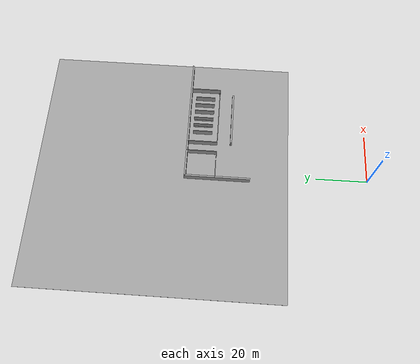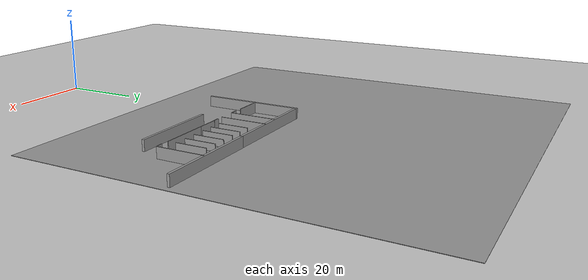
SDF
<sdf version="1.7">
 <world name="default">
  <model name="ground_plane">
   <static>1</static>
   <link name="link">
    <collision name="collision">
     <geometry><plane><normal>0 0 1</normal><size>100 100</size></plane></geometry>
     <surface><friction><ode><mu>100</mu><mu2>50</mu2></ode></friction></surface>
    </collision>
    <visual name="visual">
     <cast_shadows>0</cast_shadows>
     <geometry><plane><normal>0 0 1</normal><size>100 100</size></plane></geometry>
     <material>
      <script><uri>file://media/materials/scripts/gazebo.material</uri><name>Gazebo/Grey</name></script>
     </material>
    </visual>
   </link>
  </model>
  <model name="ground_plane_0">
   <static>1</static>
   <link name="link">
    <collision name="collision">
     <geometry><plane><normal>0 0 1</normal><size>100 100</size></plane></geometry>
     <surface><friction><ode><mu>100</mu><mu2>50</mu2></ode></friction></surface>
    </collision>
    <visual name="visual">
     <cast_shadows>0</cast_shadows>
     <geometry><plane><normal>0 0 1</normal><size>100 100</size></plane></geometry>
     <material>
      <script><uri>file://media/materials/scripts/gazebo.material</uri><name>Gazebo/Grey</name></script>
     </material>
    </visual>
   </link>
   <pose>-0.073857 81.0851 0 0 -0 0</pose>
  </model>
  <model name="grew_wall_long_vertial_0_clone">
   <model name="grey_wall_long">
    <link name="link">
     <pose>0 0 1.37589 0 -0 0</pose>
     <inertial>
      <inertia><ixx>0</ixx><ixy>0</ixy><ixz>0</ixz><iyy>0</iyy><iyz>0</iyz><izz>0</izz></inertia>
      <mass>0</mass>
     </inertial>
     <visual name="visual">
      <cast_shadows>0</cast_shadows>
      <geometry><box><size>25.8815 0.642976 2.8</size></box></geometry>
      <material>
       <script>
        <uri>model://grey_wall/materials/scripts</uri>
        <uri>model://grey_wall/materials/textures</uri>
        <name>vrc/grey_wall</name>
       </script>
       <shader type="pixel"><normal_map>__default__</normal_map></shader>
       <ambient>1 1 1 1</ambient>
       <diffuse>1 1 1 1</diffuse>
       <specular>0 0 0 1</specular>
       <emissive>0 0 0 1</emissive>
      </material>
     </visual>
     <collision name="collision">
      <geometry><box><size>25.8815 0.642976 2.8</size></box></geometry>
      <surface>
       <friction>
        <ode><mu>1</mu><mu2>1</mu2><fdir1>0 0 0</fdir1><slip1>0</slip1><slip2>0</slip2></ode>
        <torsional>
         <coefficient>1</coefficient>
         <patch_radius>0</patch_radius>
         <surface_radius>0</surface_radius>
         <use_patch_radius>1</use_patch_radius>
         <ode><slip>0</slip></ode>
        </torsional>
       </friction>
       <bounce><restitution_coefficient>0</restitution_coefficient><threshold>1e+06</threshold></bounce>
       <contact>
        <collide_without_contact>0</collide_without_contact>
        <collide_without_contact_bitmask>1</collide_without_contact_bitmask>
        <collide_bitmask>1</collide_bitmask>
        <ode>
         <soft_cfm>0</soft_cfm>
         <soft_erp>0.2</soft_erp>
         <kp>1e+13</kp>
         <kd>1</kd>
         <max_vel>0.01</max_vel>
         <min_depth>0</min_depth>
        </ode>
        <bullet>
         <split_impulse>1</split_impulse>
         <split_impulse_penetration_threshold>-0.01</split_impulse_penetration_threshold>
         <soft_cfm>0</soft_cfm>
         <soft_erp>0.2</soft_erp>
         <kp>1e+13</kp>
         <kd>1</kd>
        </bullet>
       </contact>
      </surface>
     </collision>
    </link>
    <static>1</static>
    <pose>1e-06 -0 0 0 -0 1.57003</pose>
   </model>
   <static>0</static>
   <pose>-2.80084 59.1647 0 0 -0 0</pose>
  </model>
  <model name="grey_wall_long_2">
   <link name="link">
    <pose>0 0 1.37589 0 -0 0</pose>
    <inertial>
     <inertia><ixx>0</ixx><ixy>0</ixy><ixz>0</ixz><iyy>0</iyy><iyz>0</iyz><izz>0</izz></inertia>
     <mass>0</mass>
    </inertial>
    <visual name="visual">
     <cast_shadows>0</cast_shadows>
     <geometry><box><size>25.8815 0.642976 2.8</size></box></geometry>
     <material>
      <script>
       <uri>model://grey_wall/materials/scripts</uri>
       <uri>model://grey_wall/materials/textures</uri>
       <name>vrc/grey_wall</name>
      </script>
      <shader type="pixel"><normal_map>__default__</normal_map></shader>
      <ambient>1 1 1 1</ambient>
      <diffuse>1 1 1 1</diffuse>
      <specular>0 0 0 1</specular>
      <emissive>0 0 0 1</emissive>
     </material>
    </visual>
    <collision name="collision">
     <geometry><box><size>25.8815 0.642976 2.8</size></box></geometry>
     <surface>
      <friction>
       <ode><mu>1</mu><mu2>1</mu2><fdir1>0 0 0</fdir1><slip1>0</slip1><slip2>0</slip2></ode>
       <torsional>
        <coefficient>1</coefficient>
        <patch_radius>0</patch_radius>
        <surface_radius>0</surface_radius>
        <use_patch_radius>1</use_patch_radius>
        <ode><slip>0</slip></ode>
       </torsional>
      </friction>
      <bounce><restitution_coefficient>0</restitution_coefficient><threshold>1e+06</threshold></bounce>
      <contact>
       <collide_without_contact>0</collide_without_contact>
       <collide_without_contact_bitmask>1</collide_without_contact_bitmask>
       <collide_bitmask>1</collide_bitmask>
       <ode>
        <soft_cfm>0</soft_cfm>
        <soft_erp>0.2</soft_erp>
        <kp>1e+13</kp>
        <kd>1</kd>
        <max_vel>0.01</max_vel>
        <min_depth>0</min_depth>
       </ode>
       <bullet>
        <split_impulse>1</split_impulse>
        <split_impulse_penetration_threshold>-0.01</split_impulse_penetration_threshold>
        <soft_cfm>0</soft_cfm>
        <soft_erp>0.2</soft_erp>
        <kp>1e+13</kp>
        <kd>1</kd>
       </bullet>
      </contact>
     </surface>
    </collision>
   </link>
   <static>1</static>
   <pose>9.87003 71.7729 0 0 -0 0</pose>
  </model>
  <model name="grey_wall_long_term">
   <link name="link">
    <pose>-1.74587 -0.378849 1.37589 0 -0 0</pose>
    <inertial>
     <inertia><ixx>0</ixx><ixy>0</ixy><ixz>0</ixz><iyy>0</iyy><iyz>0</iyz><izz>0</izz></inertia>
     <mass>0</mass>
    </inertial>
    <visual name="visual">
     <cast_shadows>0</cast_shadows>
     <geometry><box><size>22.1596 0.642976 2.8</size></box></geometry>
     <material>
      <script>
       <uri>model://grey_wall/materials/scripts</uri>
       <uri>model://grey_wall/materials/textures</uri>
       <name>vrc/grey_wall</name>
      </script>
      <shader type="pixel"><normal_map>__default__</normal_map></shader>
      <ambient>1 1 1 1</ambient>
      <diffuse>1 1 1 1</diffuse>
      <specular>0 0 0 1</specular>
      <emissive>0 0 0 1</emissive>
     </material>
    </visual>
    <collision name="collision">
     <geometry><box><size>22.1596 0.642976 2.8</size></box></geometry>
     <surface>
      <friction>
       <ode><mu>1</mu><mu2>1</mu2><fdir1>0 0 0</fdir1><slip1>0</slip1><slip2>0</slip2></ode>
       <torsional>
        <coefficient>1</coefficient>
        <patch_radius>0</patch_radius>
        <surface_radius>0</surface_radius>
        <use_patch_radius>1</use_patch_radius>
        <ode><slip>0</slip></ode>
       </torsional>
      </friction>
      <bounce><restitution_coefficient>0</restitution_coefficient><threshold>1e+06</threshold></bounce>
      <contact>
       <collide_without_contact>0</collide_without_contact>
       <collide_without_contact_bitmask>1</collide_without_contact_bitmask>
       <collide_bitmask>1</collide_bitmask>
       <ode>
        <soft_cfm>0</soft_cfm>
        <soft_erp>0.2</soft_erp>
        <kp>1e+13</kp>
        <kd>1</kd>
        <max_vel>0.01</max_vel>
        <min_depth>0</min_depth>
       </ode>
       <bullet>
        <split_impulse>1</split_impulse>
        <split_impulse_penetration_threshold>-0.01</split_impulse_penetration_threshold>
        <soft_cfm>0</soft_cfm>
        <soft_erp>0.2</soft_erp>
        <kp>1e+13</kp>
        <kd>1</kd>
       </bullet>
      </contact>
     </surface>
    </collision>
   </link>
   <static>1</static>
   <pose>25.4016 54.6879 0 0 -0 0</pose>
  </model>
  <model name="grey_wall_long_2_clone">
   <link name="link">
    <pose>0 0 1.37589 0 -0 0</pose>
    <inertial>
     <inertia><ixx>0</ixx><ixy>0</ixy><ixz>0</ixz><iyy>0</iyy><iyz>0</iyz><izz>0</izz></inertia>
     <mass>0</mass>
    </inertial>
    <visual name="visual">
     <cast_shadows>0</cast_shadows>
     <geometry><box><size>25.8815 0.642976 2.8</size></box></geometry>
     <material>
      <script>
       <uri>model://grey_wall/materials/scripts</uri>
       <uri>model://grey_wall/materials/textures</uri>
       <name>vrc/grey_wall</name>
      </script>
      <shader type="pixel"><normal_map>__default__</normal_map></shader>
      <ambient>1 1 1 1</ambient>
      <diffuse>1 1 1 1</diffuse>
      <specular>0 0 0 1</specular>
      <emissive>0 0 0 1</emissive>
     </material>
    </visual>
    <collision name="collision">
     <geometry><box><size>25.8815 0.642976 2.8</size></box></geometry>
     <surface>
      <friction>
       <ode><mu>1</mu><mu2>1</mu2><fdir1>0 0 0</fdir1><slip1>0</slip1><slip2>0</slip2></ode>
       <torsional>
        <coefficient>1</coefficient>
        <patch_radius>0</patch_radius>
        <surface_radius>0</surface_radius>
        <use_patch_radius>1</use_patch_radius>
        <ode><slip>0</slip></ode>
       </torsional>
      </friction>
      <bounce><restitution_coefficient>0</restitution_coefficient><threshold>1e+06</threshold></bounce>
      <contact>
       <collide_without_contact>0</collide_without_contact>
       <collide_without_contact_bitmask>1</collide_without_contact_bitmask>
       <collide_bitmask>1</collide_bitmask>
       <ode>
        <soft_cfm>0</soft_cfm>
        <soft_erp>0.2</soft_erp>
        <kp>1e+13</kp>
        <kd>1</kd>
        <max_vel>0.01</max_vel>
        <min_depth>0</min_depth>
       </ode>
       <bullet>
        <split_impulse>1</split_impulse>
        <split_impulse_penetration_threshold>-0.01</split_impulse_penetration_threshold>
        <soft_cfm>0</soft_cfm>
        <soft_erp>0.2</soft_erp>
        <kp>1e+13</kp>
        <kd>1</kd>
       </bullet>
      </contact>
     </surface>
    </collision>
   </link>
   <static>1</static>
   <pose>35.559 71.815 0 0 -0 0</pose>
  </model>
  <model name="grey_wall_12m_vertial_1">
   <link name="link">
    <pose>0.289112 -0.003891 1.4 0 0 -1.5701</pose>
    <inertial>
     <inertia><ixx>0</ixx><ixy>0</ixy><ixz>0</ixz><iyy>0</iyy><iyz>0</iyz><izz>0</izz></inertia>
     <mass>0</mass>
    </inertial>
    <visual name="visual">
     <cast_shadows>0</cast_shadows>
     <geometry><box><size>12.0527 0.2 2.8</size></box></geometry>
     <material>
      <script>
       <uri>model://grey_wall/materials/scripts</uri>
       <uri>model://grey_wall/materials/textures</uri>
       <name>vrc/grey_wall</name>
      </script>
      <shader type="pixel"/>
      <ambient>1 1 1 1</ambient>
      <diffuse>1 1 1 1</diffuse>
      <specular>0 0 0 1</specular>
      <emissive>0 0 0 1</emissive>
     </material>
    </visual>
    <collision name="collision">
     <geometry><box><size>12.0527 0.2 2.8</size></box></geometry>
     <surface>
      <friction>
       <ode><mu>1</mu><mu2>1</mu2><fdir1>0 0 0</fdir1><slip1>0</slip1><slip2>0</slip2></ode>
       <torsional>
        <coefficient>1</coefficient>
        <patch_radius>0</patch_radius>
        <surface_radius>0</surface_radius>
        <use_patch_radius>1</use_patch_radius>
        <ode><slip>0</slip></ode>
       </torsional>
      </friction>
      <bounce><restitution_coefficient>0</restitution_coefficient><threshold>1e+06</threshold></bounce>
      <contact>
       <collide_without_contact>0</collide_without_contact>
       <collide_without_contact_bitmask>1</collide_without_contact_bitmask>
       <collide_bitmask>1</collide_bitmask>
       <ode>
        <soft_cfm>0</soft_cfm>
        <soft_erp>0.2</soft_erp>
        <kp>1e+13</kp>
        <kd>1</kd>
        <max_vel>0.01</max_vel>
        <min_depth>0</min_depth>
       </ode>
       <bullet>
        <split_impulse>1</split_impulse>
        <split_impulse_penetration_threshold>-0.01</split_impulse_penetration_threshold>
        <soft_cfm>0</soft_cfm>
        <soft_erp>0.2</soft_erp>
        <kp>1e+13</kp>
        <kd>1</kd>
       </bullet>
      </contact>
     </surface>
    </collision>
   </link>
   <static>1</static>
   <pose>36.6721 65.8315 0 0 -0 0</pose>
  </model>
  <model name="grey_wall_12m_vertial_2">
   <link name="link">
    <pose>0.289112 -0.003891 1.4 0 0 -1.5701</pose>
    <inertial>
     <inertia><ixx>0</ixx><ixy>0</ixy><ixz>0</ixz><iyy>0</iyy><iyz>0</iyz><izz>0</izz></inertia>
     <mass>0</mass>
    </inertial>
    <visual name="visual">
     <cast_shadows>0</cast_shadows>
     <geometry><box><size>12.0527 0.2 2.8</size></box></geometry>
     <material>
      <script>
       <uri>model://grey_wall/materials/scripts</uri>
       <uri>model://grey_wall/materials/textures</uri>
       <name>vrc/grey_wall</name>
      </script>
      <shader type="pixel"/>
      <ambient>1 1 1 1</ambient>
      <diffuse>1 1 1 1</diffuse>
      <specular>0 0 0 1</specular>
      <emissive>0 0 0 1</emissive>
     </material>
    </visual>
    <collision name="collision">
     <geometry><box><size>12.0527 0.2 2.8</size></box></geometry>
     <surface>
      <friction>
       <ode><mu>1</mu><mu2>1</mu2><fdir1>0 0 0</fdir1><slip1>0</slip1><slip2>0</slip2></ode>
       <torsional>
        <coefficient>1</coefficient>
        <patch_radius>0</patch_radius>
        <surface_radius>0</surface_radius>
        <use_patch_radius>1</use_patch_radius>
        <ode><slip>0</slip></ode>
       </torsional>
      </friction>
      <bounce><restitution_coefficient>0</restitution_coefficient><threshold>1e+06</threshold></bounce>
      <contact>
       <collide_without_contact>0</collide_without_contact>
       <collide_without_contact_bitmask>1</collide_without_contact_bitmask>
       <collide_bitmask>1</collide_bitmask>
       <ode>
        <soft_cfm>0</soft_cfm>
        <soft_erp>0.2</soft_erp>
        <kp>1e+13</kp>
        <kd>1</kd>
        <max_vel>0.01</max_vel>
        <min_depth>0</min_depth>
       </ode>
       <bullet>
        <split_impulse>1</split_impulse>
        <split_impulse_penetration_threshold>-0.01</split_impulse_penetration_threshold>
        <soft_cfm>0</soft_cfm>
        <soft_erp>0.2</soft_erp>
        <kp>1e+13</kp>
        <kd>1</kd>
       </bullet>
      </contact>
     </surface>
    </collision>
   </link>
   <static>1</static>
   <pose>12.1481 65.8336 0 0 -0 0</pose>
  </model>
  <model name="grey_wall_12m">
   <link name="link">
    <pose>0.289112 -0.003891 1.4 0 -0 0</pose>
    <inertial>
     <inertia><ixx>0</ixx><ixy>0</ixy><ixz>0</ixz><iyy>0</iyy><iyz>0</iyz><izz>0</izz></inertia>
     <mass>0</mass>
    </inertial>
    <visual name="visual">
     <cast_shadows>0</cast_shadows>
     <geometry><box><size>12.0527 0.2 2.8</size></box></geometry>
     <material>
      <script>
       <uri>model://grey_wall/materials/scripts</uri>
       <uri>model://grey_wall/materials/textures</uri>
       <name>vrc/grey_wall</name>
      </script>
      <shader type="pixel"/>
      <ambient>1 1 1 1</ambient>
      <diffuse>1 1 1 1</diffuse>
      <specular>0 0 0 1</specular>
      <emissive>0 0 0 1</emissive>
     </material>
    </visual>
    <collision name="collision">
     <geometry><box><size>12.0527 0.2 2.8</size></box></geometry>
     <surface>
      <friction>
       <ode><mu>1</mu><mu2>1</mu2><fdir1>0 0 0</fdir1><slip1>0</slip1><slip2>0</slip2></ode>
       <torsional>
        <coefficient>1</coefficient>
        <patch_radius>0</patch_radius>
        <surface_radius>0</surface_radius>
        <use_patch_radius>1</use_patch_radius>
        <ode><slip>0</slip></ode>
       </torsional>
      </friction>
      <bounce><restitution_coefficient>0</restitution_coefficient><threshold>1e+06</threshold></bounce>
      <contact>
       <collide_without_contact>0</collide_without_contact>
       <collide_without_contact_bitmask>1</collide_without_contact_bitmask>
       <collide_bitmask>1</collide_bitmask>
       <ode>
        <soft_cfm>0</soft_cfm>
        <soft_erp>0.2</soft_erp>
        <kp>1e+13</kp>
        <kd>1</kd>
        <max_vel>0.01</max_vel>
        <min_depth>0</min_depth>
       </ode>
       <bullet>
        <split_impulse>1</split_impulse>
        <split_impulse_penetration_threshold>-0.01</split_impulse_penetration_threshold>
        <soft_cfm>0</soft_cfm>
        <soft_erp>0.2</soft_erp>
        <kp>1e+13</kp>
        <kd>1</kd>
       </bullet>
      </contact>
     </surface>
    </collision>
   </link>
   <static>1</static>
   <pose>21.5763 59.8868 0 0 -0 0</pose>
  </model>
  <model name="grey_wall_12m_clone">
   <link name="link">
    <pose>0.289112 -0.003891 1.4 0 -0 0</pose>
    <inertial>
     <inertia><ixx>0</ixx><ixy>0</ixy><ixz>0</ixz><iyy>0</iyy><iyz>0</iyz><izz>0</izz></inertia>
     <mass>0</mass>
    </inertial>
    <visual name="visual">
     <cast_shadows>0</cast_shadows>
     <geometry><box><size>12.0527 0.2 2.8</size></box></geometry>
     <material>
      <script>
       <uri>model://grey_wall/materials/scripts</uri>
       <uri>model://grey_wall/materials/textures</uri>
       <name>vrc/grey_wall</name>
      </script>
      <shader type="pixel"/>
      <ambient>1 1 1 1</ambient>
      <diffuse>1 1 1 1</diffuse>
      <specular>0 0 0 1</specular>
      <emissive>0 0 0 1</emissive>
     </material>
    </visual>
    <collision name="collision">
     <geometry><box><size>12.0527 0.2 2.8</size></box></geometry>
     <surface>
      <friction>
       <ode><mu>1</mu><mu2>1</mu2><fdir1>0 0 0</fdir1><slip1>0</slip1><slip2>0</slip2></ode>
       <torsional>
        <coefficient>1</coefficient>
        <patch_radius>0</patch_radius>
        <surface_radius>0</surface_radius>
        <use_patch_radius>1</use_patch_radius>
        <ode><slip>0</slip></ode>
       </torsional>
      </friction>
      <bounce><restitution_coefficient>0</restitution_coefficient><threshold>1e+06</threshold></bounce>
      <contact>
       <collide_without_contact>0</collide_without_contact>
       <collide_without_contact_bitmask>1</collide_without_contact_bitmask>
       <collide_bitmask>1</collide_bitmask>
       <ode>
        <soft_cfm>0</soft_cfm>
        <soft_erp>0.2</soft_erp>
        <kp>1e+13</kp>
        <kd>1</kd>
        <max_vel>0.01</max_vel>
        <min_depth>0</min_depth>
       </ode>
       <bullet>
        <split_impulse>1</split_impulse>
        <split_impulse_penetration_threshold>-0.01</split_impulse_penetration_threshold>
        <soft_cfm>0</soft_cfm>
        <soft_erp>0.2</soft_erp>
        <kp>1e+13</kp>
        <kd>1</kd>
       </bullet>
      </contact>
     </surface>
    </collision>
   </link>
   <static>1</static>
   <pose>26.9249 59.895 0 0 -0 0</pose>
  </model>
  <model name="grey_wall_low_clone">
   <link name="link">
    <pose>0.546134 -0.568384 0.521109 0 -0 0</pose>
    <inertial>
     <inertia><ixx>0</ixx><ixy>0</ixy><ixz>0</ixz><iyy>0</iyy><iyz>0</iyz><izz>0</izz></inertia>
     <mass>0</mass>
    </inertial>
    <visual name="visual">
     <cast_shadows>0</cast_shadows>
     <geometry><box><size>7.82417 0.2 1.03493</size></box></geometry>
     <material>
      <script>
       <uri>model://grey_wall/materials/scripts</uri>
       <uri>model://grey_wall/materials/textures</uri>
       <name>vrc/grey_wall</name>
      </script>
      <shader type="pixel"/>
      <ambient>1 1 1 1</ambient>
      <diffuse>1 1 1 1</diffuse>
      <specular>0 0 0 1</specular>
      <emissive>0 0 0 1</emissive>
     </material>
    </visual>
    <collision name="collision">
     <geometry><box><size>7.82417 0.2 1.03493</size></box></geometry>
     <surface>
      <friction>
       <ode><mu>1</mu><mu2>1</mu2><fdir1>0 0 0</fdir1><slip1>0</slip1><slip2>0</slip2></ode>
       <torsional>
        <coefficient>1</coefficient>
        <patch_radius>0</patch_radius>
        <surface_radius>0</surface_radius>
        <use_patch_radius>1</use_patch_radius>
        <ode><slip>0</slip></ode>
       </torsional>
      </friction>
      <bounce><restitution_coefficient>0</restitution_coefficient><threshold>1e+06</threshold></bounce>
      <contact>
       <collide_without_contact>0</collide_without_contact>
       <collide_without_contact_bitmask>1</collide_without_contact_bitmask>
       <collide_bitmask>1</collide_bitmask>
       <ode>
        <soft_cfm>0</soft_cfm>
        <soft_erp>0.2</soft_erp>
        <kp>1e+13</kp>
        <kd>1</kd>
        <max_vel>0.01</max_vel>
        <min_depth>0</min_depth>
       </ode>
       <bullet>
        <split_impulse>1</split_impulse>
        <split_impulse_penetration_threshold>-0.01</split_impulse_penetration_threshold>
        <soft_cfm>0</soft_cfm>
        <soft_erp>0.2</soft_erp>
        <kp>1e+13</kp>
        <kd>1</kd>
       </bullet>
      </contact>
     </surface>
    </collision>
   </link>
   <static>1</static>
   <pose>20.9136 66.5007 -0 0 0 -1.56746</pose>
  </model>
  <model name="grey_wall_low_clone_0">
   <link name="link">
    <pose>0.546134 -0.568384 0.521109 0 -0 0</pose>
    <inertial>
     <inertia><ixx>0</ixx><ixy>0</ixy><ixz>0</ixz><iyy>0</iyy><iyz>0</iyz><izz>0</izz></inertia>
     <mass>0</mass>
    </inertial>
    <visual name="visual">
     <cast_shadows>0</cast_shadows>
     <geometry><box><size>7.82417 0.2 1.03493</size></box></geometry>
     <material>
      <script>
       <uri>model://grey_wall/materials/scripts</uri>
       <uri>model://grey_wall/materials/textures</uri>
       <name>vrc/grey_wall</name>
      </script>
      <shader type="pixel"/>
      <ambient>1 1 1 1</ambient>
      <diffuse>1 1 1 1</diffuse>
      <specular>0 0 0 1</specular>
      <emissive>0 0 0 1</emissive>
     </material>
    </visual>
    <collision name="collision">
     <geometry><box><size>7.82417 0.2 1.03493</size></box></geometry>
     <surface>
      <friction>
       <ode><mu>1</mu><mu2>1</mu2><fdir1>0 0 0</fdir1><slip1>0</slip1><slip2>0</slip2></ode>
       <torsional>
        <coefficient>1</coefficient>
        <patch_radius>0</patch_radius>
        <surface_radius>0</surface_radius>
        <use_patch_radius>1</use_patch_radius>
        <ode><slip>0</slip></ode>
       </torsional>
      </friction>
      <bounce><restitution_coefficient>0</restitution_coefficient><threshold>1e+06</threshold></bounce>
      <contact>
       <collide_without_contact>0</collide_without_contact>
       <collide_without_contact_bitmask>1</collide_without_contact_bitmask>
       <collide_bitmask>1</collide_bitmask>
       <ode>
        <soft_cfm>0</soft_cfm>
        <soft_erp>0.2</soft_erp>
        <kp>1e+13</kp>
        <kd>1</kd>
        <max_vel>0.01</max_vel>
        <min_depth>0</min_depth>
       </ode>
       <bullet>
        <split_impulse>1</split_impulse>
        <split_impulse_penetration_threshold>-0.01</split_impulse_penetration_threshold>
        <soft_cfm>0</soft_cfm>
        <soft_erp>0.2</soft_erp>
        <kp>1e+13</kp>
        <kd>1</kd>
       </bullet>
      </contact>
     </surface>
    </collision>
   </link>
   <static>1</static>
   <pose>23.9356 66.4695 -0 0 0 -1.56746</pose>
  </model>
  <model name="grey_wall_low_clone_1">
   <link name="link">
    <pose>0.546134 -0.568384 0.521109 0 -0 0</pose>
    <inertial>
     <inertia><ixx>0</ixx><ixy>0</ixy><ixz>0</ixz><iyy>0</iyy><iyz>0</iyz><izz>0</izz></inertia>
     <mass>0</mass>
    </inertial>
    <visual name="visual">
     <cast_shadows>0</cast_shadows>
     <geometry><box><size>7.82417 0.2 1.03493</size></box></geometry>
     <material>
      <script>
       <uri>model://grey_wall/materials/scripts</uri>
       <uri>model://grey_wall/materials/textures</uri>
       <name>vrc/grey_wall</name>
      </script>
      <shader type="pixel"/>
      <ambient>1 1 1 1</ambient>
      <diffuse>1 1 1 1</diffuse>
      <specular>0 0 0 1</specular>
      <emissive>0 0 0 1</emissive>
     </material>
    </visual>
    <collision name="collision">
     <geometry><box><size>7.82417 0.2 1.03493</size></box></geometry>
     <surface>
      <friction>
       <ode><mu>1</mu><mu2>1</mu2><fdir1>0 0 0</fdir1><slip1>0</slip1><slip2>0</slip2></ode>
       <torsional>
        <coefficient>1</coefficient>
        <patch_radius>0</patch_radius>
        <surface_radius>0</surface_radius>
        <use_patch_radius>1</use_patch_radius>
        <ode><slip>0</slip></ode>
       </torsional>
      </friction>
      <bounce><restitution_coefficient>0</restitution_coefficient><threshold>1e+06</threshold></bounce>
      <contact>
       <collide_without_contact>0</collide_without_contact>
       <collide_without_contact_bitmask>1</collide_without_contact_bitmask>
       <collide_bitmask>1</collide_bitmask>
       <ode>
        <soft_cfm>0</soft_cfm>
        <soft_erp>0.2</soft_erp>
        <kp>1e+13</kp>
        <kd>1</kd>
        <max_vel>0.01</max_vel>
        <min_depth>0</min_depth>
       </ode>
       <bullet>
        <split_impulse>1</split_impulse>
        <split_impulse_penetration_threshold>-0.01</split_impulse_penetration_threshold>
        <soft_cfm>0</soft_cfm>
        <soft_erp>0.2</soft_erp>
        <kp>1e+13</kp>
        <kd>1</kd>
       </bullet>
      </contact>
     </surface>
    </collision>
   </link>
   <static>1</static>
   <pose>27.2521 66.4319 -0 0 0 -1.56746</pose>
  </model>
  <model name="grey_wall_low_clone_2">
   <link name="link">
    <pose>0.546134 -0.568384 0.521109 0 -0 0</pose>
    <inertial>
     <inertia><ixx>0</ixx><ixy>0</ixy><ixz>0</ixz><iyy>0</iyy><iyz>0</iyz><izz>0</izz></inertia>
     <mass>0</mass>
    </inertial>
    <visual name="visual">
     <cast_shadows>0</cast_shadows>
     <geometry><box><size>7.82417 0.2 1.03493</size></box></geometry>
     <material>
      <script>
       <uri>model://grey_wall/materials/scripts</uri>
       <uri>model://grey_wall/materials/textures</uri>
       <name>vrc/grey_wall</name>
      </script>
      <shader type="pixel"/>
      <ambient>1 1 1 1</ambient>
      <diffuse>1 1 1 1</diffuse>
      <specular>0 0 0 1</specular>
      <emissive>0 0 0 1</emissive>
     </material>
    </visual>
    <collision name="collision">
     <geometry><box><size>7.82417 0.2 1.03493</size></box></geometry>
     <surface>
      <friction>
       <ode><mu>1</mu><mu2>1</mu2><fdir1>0 0 0</fdir1><slip1>0</slip1><slip2>0</slip2></ode>
       <torsional>
        <coefficient>1</coefficient>
        <patch_radius>0</patch_radius>
        <surface_radius>0</surface_radius>
        <use_patch_radius>1</use_patch_radius>
        <ode><slip>0</slip></ode>
       </torsional>
      </friction>
      <bounce><restitution_coefficient>0</restitution_coefficient><threshold>1e+06</threshold></bounce>
      <contact>
       <collide_without_contact>0</collide_without_contact>
       <collide_without_contact_bitmask>1</collide_without_contact_bitmask>
       <collide_bitmask>1</collide_bitmask>
       <ode>
        <soft_cfm>0</soft_cfm>
        <soft_erp>0.2</soft_erp>
        <kp>1e+13</kp>
        <kd>1</kd>
        <max_vel>0.01</max_vel>
        <min_depth>0</min_depth>
       </ode>
       <bullet>
        <split_impulse>1</split_impulse>
        <split_impulse_penetration_threshold>-0.01</split_impulse_penetration_threshold>
        <soft_cfm>0</soft_cfm>
        <soft_erp>0.2</soft_erp>
        <kp>1e+13</kp>
        <kd>1</kd>
       </bullet>
      </contact>
     </surface>
    </collision>
   </link>
   <static>1</static>
   <pose>30.4505 66.4333 -0 0 0 -1.56746</pose>
  </model>
  <model name="grey_wall_low_clone_3">
   <link name="link">
    <pose>0.546134 -0.568384 0.521109 0 -0 0</pose>
    <inertial>
     <inertia><ixx>0</ixx><ixy>0</ixy><ixz>0</ixz><iyy>0</iyy><iyz>0</iyz><izz>0</izz></inertia>
     <mass>0</mass>
    </inertial>
    <visual name="visual">
     <cast_shadows>0</cast_shadows>
     <geometry><box><size>7.82417 0.2 1.03493</size></box></geometry>
     <material>
      <script>
       <uri>model://grey_wall/materials/scripts</uri>
       <uri>model://grey_wall/materials/textures</uri>
       <name>vrc/grey_wall</name>
      </script>
      <shader type="pixel"/>
      <ambient>1 1 1 1</ambient>
      <diffuse>1 1 1 1</diffuse>
      <specular>0 0 0 1</specular>
      <emissive>0 0 0 1</emissive>
     </material>
    </visual>
    <collision name="collision">
     <geometry><box><size>7.82417 0.2 1.03493</size></box></geometry>
     <surface>
      <friction>
       <ode><mu>1</mu><mu2>1</mu2><fdir1>0 0 0</fdir1><slip1>0</slip1><slip2>0</slip2></ode>
       <torsional>
        <coefficient>1</coefficient>
        <patch_radius>0</patch_radius>
        <surface_radius>0</surface_radius>
        <use_patch_radius>1</use_patch_radius>
        <ode><slip>0</slip></ode>
       </torsional>
      </friction>
      <bounce><restitution_coefficient>0</restitution_coefficient><threshold>1e+06</threshold></bounce>
      <contact>
       <collide_without_contact>0</collide_without_contact>
       <collide_without_contact_bitmask>1</collide_without_contact_bitmask>
       <collide_bitmask>1</collide_bitmask>
       <ode>
        <soft_cfm>0</soft_cfm>
        <soft_erp>0.2</soft_erp>
        <kp>1e+13</kp>
        <kd>1</kd>
        <max_vel>0.01</max_vel>
        <min_depth>0</min_depth>
       </ode>
       <bullet>
        <split_impulse>1</split_impulse>
        <split_impulse_penetration_threshold>-0.01</split_impulse_penetration_threshold>
        <soft_cfm>0</soft_cfm>
        <soft_erp>0.2</soft_erp>
        <kp>1e+13</kp>
        <kd>1</kd>
       </bullet>
      </contact>
     </surface>
    </collision>
   </link>
   <static>1</static>
   <pose>33.621 66.3367 -0 0 0 -1.56746</pose>
  </model>
  <model name="grey_wall_12m_vertial_2_clone">
   <link name="link">
    <pose>0.289112 -0.003891 1.4 0 0 -1.5701</pose>
    <inertial>
     <inertia><ixx>0</ixx><ixy>0</ixy><ixz>0</ixz><iyy>0</iyy><iyz>0</iyz><izz>0</izz></inertia>
     <mass>0</mass>
    </inertial>
    <visual name="visual">
     <cast_shadows>0</cast_shadows>
     <geometry><box><size>12.0527 0.2 2.8</size></box></geometry>
     <material>
      <script>
       <uri>model://grey_wall/materials/scripts</uri>
       <uri>model://grey_wall/materials/textures</uri>
       <name>vrc/grey_wall</name>
      </script>
      <shader type="pixel"/>
      <ambient>1 1 1 1</ambient>
      <diffuse>1 1 1 1</diffuse>
      <specular>0 0 0 1</specular>
      <emissive>0 0 0 1</emissive>
     </material>
    </visual>
    <collision name="collision">
     <geometry><box><size>12.0527 0.2 2.8</size></box></geometry>
     <surface>
      <friction>
       <ode><mu>1</mu><mu2>1</mu2><fdir1>0 0 0</fdir1><slip1>0</slip1><slip2>0</slip2></ode>
       <torsional>
        <coefficient>1</coefficient>
        <patch_radius>0</patch_radius>
        <surface_radius>0</surface_radius>
        <use_patch_radius>1</use_patch_radius>
        <ode><slip>0</slip></ode>
       </torsional>
      </friction>
      <bounce><restitution_coefficient>0</restitution_coefficient><threshold>1e+06</threshold></bounce>
      <contact>
       <collide_without_contact>0</collide_without_contact>
       <collide_without_contact_bitmask>1</collide_without_contact_bitmask>
       <collide_bitmask>1</collide_bitmask>
       <ode>
        <soft_cfm>0</soft_cfm>
        <soft_erp>0.2</soft_erp>
        <kp>1e+13</kp>
        <kd>1</kd>
        <max_vel>0.01</max_vel>
        <min_depth>0</min_depth>
       </ode>
       <bullet>
        <split_impulse>1</split_impulse>
        <split_impulse_penetration_threshold>-0.01</split_impulse_penetration_threshold>
        <soft_cfm>0</soft_cfm>
        <soft_erp>0.2</soft_erp>
        <kp>1e+13</kp>
        <kd>1</kd>
       </bullet>
      </contact>
     </surface>
    </collision>
   </link>
   <static>1</static>
   <pose>7.96276 65.8751 0 0 -0 0</pose>
  </model>
  <model name="grey_wall_0">
   <static>1</static>
   <link name="link">
    <pose>0 0 1.4 0 -0 0</pose>
    <collision name="collision"><geometry><box><size>7.5 0.2 2.8</size></box></geometry></collision>
    <visual name="visual">
     <cast_shadows>0</cast_shadows>
     <geometry><box><size>7.5 0.2 2.8</size></box></geometry>
     <material>
      <script>
       <uri>model://grey_wall/materials/scripts</uri>
       <uri>model://grey_wall/materials/textures</uri>
       <name>vrc/grey_wall</name>
      </script>
     </material>
    </visual>
   </link>
   <pose>0.681325 60.0146 0 0 -0 0</pose>
  </model>
  <model name="grey_wall_high">
   <link name="link">
    <pose>0.546134 -0.568384 0.521109 0 -0 0</pose>
    <inertial>
     <inertia><ixx>0</ixx><ixy>0</ixy><ixz>0</ixz><iyy>0</iyy><iyz>0</iyz><izz>0</izz></inertia>
     <mass>0</mass>
    </inertial>
    <visual name="visual">
     <cast_shadows>0</cast_shadows>
     <geometry><box><size>7.82417 0.2 4.57376</size></box></geometry>
     <material>
      <script>
       <uri>model://grey_wall/materials/scripts</uri>
       <uri>model://grey_wall/materials/textures</uri>
       <name>vrc/grey_wall</name>
      </script>
      <shader type="pixel"/>
      <ambient>1 1 1 1</ambient>
      <diffuse>1 1 1 1</diffuse>
      <specular>0 0 0 1</specular>
      <emissive>0 0 0 1</emissive>
     </material>
    </visual>
    <collision name="collision">
     <geometry><box><size>7.82417 0.2 4.57376</size></box></geometry>
     <surface>
      <friction>
       <ode><mu>1</mu><mu2>1</mu2><fdir1>0 0 0</fdir1><slip1>0</slip1><slip2>0</slip2></ode>
       <torsional>
        <coefficient>1</coefficient>
        <patch_radius>0</patch_radius>
        <surface_radius>0</surface_radius>
        <use_patch_radius>1</use_patch_radius>
        <ode><slip>0</slip></ode>
       </torsional>
      </friction>
      <bounce><restitution_coefficient>0</restitution_coefficient><threshold>1e+06</threshold></bounce>
      <contact>
       <collide_without_contact>0</collide_without_contact>
       <collide_without_contact_bitmask>1</collide_without_contact_bitmask>
       <collide_bitmask>1</collide_bitmask>
       <ode>
        <soft_cfm>0</soft_cfm>
        <soft_erp>0.2</soft_erp>
        <kp>1e+13</kp>
        <kd>1</kd>
        <max_vel>0.01</max_vel>
        <min_depth>0</min_depth>
       </ode>
       <bullet>
        <split_impulse>1</split_impulse>
        <split_impulse_penetration_threshold>-0.01</split_impulse_penetration_threshold>
        <soft_cfm>0</soft_cfm>
        <soft_erp>0.2</soft_erp>
        <kp>1e+13</kp>
        <kd>1</kd>
       </bullet>
      </contact>
     </surface>
    </collision>
   </link>
   <static>1</static>
   <pose>17.6659 66.5258 -0 0 0 -1.56746</pose>
  </model>
  <model name="grey_wall_high_clone">
   <link name="link">
    <pose>0.546134 -0.568384 0.521109 0 -0 0</pose>
    <inertial>
     <inertia><ixx>0</ixx><ixy>0</ixy><ixz>0</ixz><iyy>0</iyy><iyz>0</iyz><izz>0</izz></inertia>
     <mass>0</mass>
    </inertial>
    <visual name="visual">
     <cast_shadows>0</cast_shadows>
     <geometry><box><size>7.82417 0.2 4.57376</size></box></geometry>
     <material>
      <script>
       <uri>model://grey_wall/materials/scripts</uri>
       <uri>model://grey_wall/materials/textures</uri>
       <name>vrc/grey_wall</name>
      </script>
      <shader type="pixel"/>
      <ambient>1 1 1 1</ambient>
      <diffuse>1 1 1 1</diffuse>
      <specular>0 0 0 1</specular>
      <emissive>0 0 0 1</emissive>
     </material>
    </visual>
    <collision name="collision">
     <geometry><box><size>7.82417 0.2 4.57376</size></box></geometry>
     <surface>
      <friction>
       <ode><mu>1</mu><mu2>1</mu2><fdir1>0 0 0</fdir1><slip1>0</slip1><slip2>0</slip2></ode>
       <torsional>
        <coefficient>1</coefficient>
        <patch_radius>0</patch_radius>
        <surface_radius>0</surface_radius>
        <use_patch_radius>1</use_patch_radius>
        <ode><slip>0</slip></ode>
       </torsional>
      </friction>
      <bounce><restitution_coefficient>0</restitution_coefficient><threshold>1e+06</threshold></bounce>
      <contact>
       <collide_without_contact>0</collide_without_contact>
       <collide_without_contact_bitmask>1</collide_without_contact_bitmask>
       <collide_bitmask>1</collide_bitmask>
       <ode>
        <soft_cfm>0</soft_cfm>
        <soft_erp>0.2</soft_erp>
        <kp>1e+13</kp>
        <kd>1</kd>
        <max_vel>0.01</max_vel>
        <min_depth>0</min_depth>
       </ode>
       <bullet>
        <split_impulse>1</split_impulse>
        <split_impulse_penetration_threshold>-0.01</split_impulse_penetration_threshold>
        <soft_cfm>0</soft_cfm>
        <soft_erp>0.2</soft_erp>
        <kp>1e+13</kp>
        <kd>1</kd>
       </bullet>
      </contact>
     </surface>
    </collision>
   </link>
   <static>1</static>
   <pose>20.9275 66.5234 -0 0 0 -1.56746</pose>
  </model>
  <model name="grey_wall_high_clone_0">
   <link name="link">
    <pose>0.546134 -0.568384 0.521109 0 -0 0</pose>
    <inertial>
     <inertia><ixx>0</ixx><ixy>0</ixy><ixz>0</ixz><iyy>0</iyy><iyz>0</iyz><izz>0</izz></inertia>
     <mass>0</mass>
    </inertial>
    <visual name="visual">
     <cast_shadows>0</cast_shadows>
     <geometry><box><size>7.82417 0.2 4.57376</size></box></geometry>
     <material>
      <script>
       <uri>model://grey_wall/materials/scripts</uri>
       <uri>model://grey_wall/materials/textures</uri>
       <name>vrc/grey_wall</name>
      </script>
      <shader type="pixel"/>
      <ambient>1 1 1 1</ambient>
      <diffuse>1 1 1 1</diffuse>
      <specular>0 0 0 1</specular>
      <emissive>0 0 0 1</emissive>
     </material>
    </visual>
    <collision name="collision">
     <geometry><box><size>7.82417 0.2 4.57376</size></box></geometry>
     <surface>
      <friction>
       <ode><mu>1</mu><mu2>1</mu2><fdir1>0 0 0</fdir1><slip1>0</slip1><slip2>0</slip2></ode>
       <torsional>
        <coefficient>1</coefficient>
        <patch_radius>0</patch_radius>
        <surface_radius>0</surface_radius>
        <use_patch_radius>1</use_patch_radius>
        <ode><slip>0</slip></ode>
       </torsional>
      </friction>
      <bounce><restitution_coefficient>0</restitution_coefficient><threshold>1e+06</threshold></bounce>
      <contact>
       <collide_without_contact>0</collide_without_contact>
       <collide_without_contact_bitmask>1</collide_without_contact_bitmask>
       <collide_bitmask>1</collide_bitmask>
       <ode>
        <soft_cfm>0</soft_cfm>
        <soft_erp>0.2</soft_erp>
        <kp>1e+13</kp>
        <kd>1</kd>
        <max_vel>0.01</max_vel>
        <min_depth>0</min_depth>
       </ode>
       <bullet>
        <split_impulse>1</split_impulse>
        <split_impulse_penetration_threshold>-0.01</split_impulse_penetration_threshold>
        <soft_cfm>0</soft_cfm>
        <soft_erp>0.2</soft_erp>
        <kp>1e+13</kp>
        <kd>1</kd>
       </bullet>
      </contact>
     </surface>
    </collision>
   </link>
   <static>1</static>
   <pose>23.9508 66.4756 -0 0 0 -1.56746</pose>
  </model>
  <model name="grey_wall_high_clone_1">
   <link name="link">
    <pose>0.546134 -0.568384 0.521109 0 -0 0</pose>
    <inertial>
     <inertia><ixx>0</ixx><ixy>0</ixy><ixz>0</ixz><iyy>0</iyy><iyz>0</iyz><izz>0</izz></inertia>
     <mass>0</mass>
    </inertial>
    <visual name="visual">
     <cast_shadows>0</cast_shadows>
     <geometry><box><size>7.82417 0.2 4.57376</size></box></geometry>
     <material>
      <script>
       <uri>model://grey_wall/materials/scripts</uri>
       <uri>model://grey_wall/materials/textures</uri>
       <name>vrc/grey_wall</name>
      </script>
      <shader type="pixel"/>
      <ambient>1 1 1 1</ambient>
      <diffuse>1 1 1 1</diffuse>
      <specular>0 0 0 1</specular>
      <emissive>0 0 0 1</emissive>
     </material>
    </visual>
    <collision name="collision">
     <geometry><box><size>7.82417 0.2 4.57376</size></box></geometry>
     <surface>
      <friction>
       <ode><mu>1</mu><mu2>1</mu2><fdir1>0 0 0</fdir1><slip1>0</slip1><slip2>0</slip2></ode>
       <torsional>
        <coefficient>1</coefficient>
        <patch_radius>0</patch_radius>
        <surface_radius>0</surface_radius>
        <use_patch_radius>1</use_patch_radius>
        <ode><slip>0</slip></ode>
       </torsional>
      </friction>
      <bounce><restitution_coefficient>0</restitution_coefficient><threshold>1e+06</threshold></bounce>
      <contact>
       <collide_without_contact>0</collide_without_contact>
       <collide_without_contact_bitmask>1</collide_without_contact_bitmask>
       <collide_bitmask>1</collide_bitmask>
       <ode>
        <soft_cfm>0</soft_cfm>
        <soft_erp>0.2</soft_erp>
        <kp>1e+13</kp>
        <kd>1</kd>
        <max_vel>0.01</max_vel>
        <min_depth>0</min_depth>
       </ode>
       <bullet>
        <split_impulse>1</split_impulse>
        <split_impulse_penetration_threshold>-0.01</split_impulse_penetration_threshold>
        <soft_cfm>0</soft_cfm>
        <soft_erp>0.2</soft_erp>
        <kp>1e+13</kp>
        <kd>1</kd>
       </bullet>
      </contact>
     </surface>
    </collision>
   </link>
   <static>1</static>
   <pose>27.2519 66.4117 -0 0 0 -1.56746</pose>
  </model>
  <model name="grey_wall_high_clone_2">
   <link name="link">
    <pose>0.546134 -0.568384 0.521109 0 -0 0</pose>
    <inertial>
     <inertia><ixx>0</ixx><ixy>0</ixy><ixz>0</ixz><iyy>0</iyy><iyz>0</iyz><izz>0</izz></inertia>
     <mass>0</mass>
    </inertial>
    <visual name="visual">
     <cast_shadows>0</cast_shadows>
     <geometry><box><size>7.82417 0.2 4.57376</size></box></geometry>
     <material>
      <script>
       <uri>model://grey_wall/materials/scripts</uri>
       <uri>model://grey_wall/materials/textures</uri>
       <name>vrc/grey_wall</name>
      </script>
      <shader type="pixel"/>
      <ambient>1 1 1 1</ambient>
      <diffuse>1 1 1 1</diffuse>
      <specular>0 0 0 1</specular>
      <emissive>0 0 0 1</emissive>
     </material>
    </visual>
    <collision name="collision">
     <geometry><box><size>7.82417 0.2 4.57376</size></box></geometry>
     <surface>
      <friction>
       <ode><mu>1</mu><mu2>1</mu2><fdir1>0 0 0</fdir1><slip1>0</slip1><slip2>0</slip2></ode>
       <torsional>
        <coefficient>1</coefficient>
        <patch_radius>0</patch_radius>
        <surface_radius>0</surface_radius>
        <use_patch_radius>1</use_patch_radius>
        <ode><slip>0</slip></ode>
       </torsional>
      </friction>
      <bounce><restitution_coefficient>0</restitution_coefficient><threshold>1e+06</threshold></bounce>
      <contact>
       <collide_without_contact>0</collide_without_contact>
       <collide_without_contact_bitmask>1</collide_without_contact_bitmask>
       <collide_bitmask>1</collide_bitmask>
       <ode>
        <soft_cfm>0</soft_cfm>
        <soft_erp>0.2</soft_erp>
        <kp>1e+13</kp>
        <kd>1</kd>
        <max_vel>0.01</max_vel>
        <min_depth>0</min_depth>
       </ode>
       <bullet>
        <split_impulse>1</split_impulse>
        <split_impulse_penetration_threshold>-0.01</split_impulse_penetration_threshold>
        <soft_cfm>0</soft_cfm>
        <soft_erp>0.2</soft_erp>
        <kp>1e+13</kp>
        <kd>1</kd>
       </bullet>
      </contact>
     </surface>
    </collision>
   </link>
   <static>1</static>
   <pose>30.4477 66.3915 -0 0 0 -1.56746</pose>
  </model>
  <model name="grey_wall_high_clone_3">
   <link name="link">
    <pose>0.546134 -0.568384 0.521109 0 -0 0</pose>
    <inertial>
     <inertia><ixx>0</ixx><ixy>0</ixy><ixz>0</ixz><iyy>0</iyy><iyz>0</iyz><izz>0</izz></inertia>
     <mass>0</mass>
    </inertial>
    <visual name="visual">
     <cast_shadows>0</cast_shadows>
     <geometry><box><size>7.82417 0.2 4.57376</size></box></geometry>
     <material>
      <script>
       <uri>model://grey_wall/materials/scripts</uri>
       <uri>model://grey_wall/materials/textures</uri>
       <name>vrc/grey_wall</name>
      </script>
      <shader type="pixel"/>
      <ambient>1 1 1 1</ambient>
      <diffuse>1 1 1 1</diffuse>
      <specular>0 0 0 1</specular>
      <emissive>0 0 0 1</emissive>
     </material>
    </visual>
    <collision name="collision">
     <geometry><box><size>7.82417 0.2 4.57376</size></box></geometry>
     <surface>
      <friction>
       <ode><mu>1</mu><mu2>1</mu2><fdir1>0 0 0</fdir1><slip1>0</slip1><slip2>0</slip2></ode>
       <torsional>
        <coefficient>1</coefficient>
        <patch_radius>0</patch_radius>
        <surface_radius>0</surface_radius>
        <use_patch_radius>1</use_patch_radius>
        <ode><slip>0</slip></ode>
       </torsional>
      </friction>
      <bounce><restitution_coefficient>0</restitution_coefficient><threshold>1e+06</threshold></bounce>
      <contact>
       <collide_without_contact>0</collide_without_contact>
       <collide_without_contact_bitmask>1</collide_without_contact_bitmask>
       <collide_bitmask>1</collide_bitmask>
       <ode>
        <soft_cfm>0</soft_cfm>
        <soft_erp>0.2</soft_erp>
        <kp>1e+13</kp>
        <kd>1</kd>
        <max_vel>0.01</max_vel>
        <min_depth>0</min_depth>
       </ode>
       <bullet>
        <split_impulse>1</split_impulse>
        <split_impulse_penetration_threshold>-0.01</split_impulse_penetration_threshold>
        <soft_cfm>0</soft_cfm>
        <soft_erp>0.2</soft_erp>
        <kp>1e+13</kp>
        <kd>1</kd>
       </bullet>
      </contact>
     </surface>
    </collision>
   </link>
   <static>1</static>
   <pose>33.621 66.3195 -0 0 0 -1.56746</pose>
  </model>
  <model name="unit_box_0">
   <pose>7.32659 59.9179 1.42942 -1e-06 -2e-06 0.004767</pose>
   <link name="link">
    <inertial>
     <mass>1</mass>
     <inertia>
      <ixx>0.166667</ixx>
      <ixy>0</ixy>
      <ixz>0</ixz>
      <iyy>0.166667</iyy>
      <iyz>0</iyz>
      <izz>0.166667</izz>
     </inertia>
    </inertial>
    <collision name="collision"><geometry><box><size>1.65822 0.202062 2.85884</size></box></geometry></collision>
    <visual name="visual">
     <geometry><box><size>1.65822 0.202062 2.85884</size></box></geometry>
     <material>
      <script><name>Gazebo/Grey</name><uri>file://media/materials/scripts/gazebo.material</uri></script>
     </material>
    </visual>
   </link>
  </model>
  <model name="unit_box_0_clone">
   <pose>15.0099 59.9013 1.42942 1e-06 2e-06 -2.5e-05</pose>
   <link name="link">
    <inertial>
     <mass>1</mass>
     <inertia>
      <ixx>0.166667</ixx>
      <ixy>0</ixy>
      <ixz>0</ixz>
      <iyy>0.166667</iyy>
      <iyz>0</iyz>
      <izz>0.166667</izz>
     </inertia>
    </inertial>
    <collision name="collision"><geometry><box><size>1.65822 0.202062 2.85884</size></box></geometry></collision>
    <visual name="visual">
     <geometry><box><size>1.65822 0.202062 2.85884</size></box></geometry>
     <material>
      <script><name>Gazebo/Grey</name><uri>file://media/materials/scripts/gazebo.material</uri></script>
     </material>
    </visual>
   </link>
  </model>
  <model name="unit_box_0_clone_clone">
   <pose>36.0346 59.856 1.42942 -0 -1e-06 0.025881</pose>
   <link name="link">
    <inertial>
     <mass>1</mass>
     <inertia>
      <ixx>0.166667</ixx>
      <ixy>0</ixy>
      <ixz>0</ixz>
      <iyy>0.166667</iyy>
      <iyz>0</iyz>
      <izz>0.166667</izz>
     </inertia>
    </inertial>
    <collision name="collision"><geometry><box><size>1.65822 0.202062 2.85884</size></box></geometry></collision>
    <visual name="visual">
     <geometry><box><size>1.65822 0.202062 2.85884</size></box></geometry>
     <material>
      <script><name>Gazebo/Grey</name><uri>file://media/materials/scripts/gazebo.material</uri></script>
     </material>
    </visual>
   </link>
  </model>
 </world>
</sdf>
